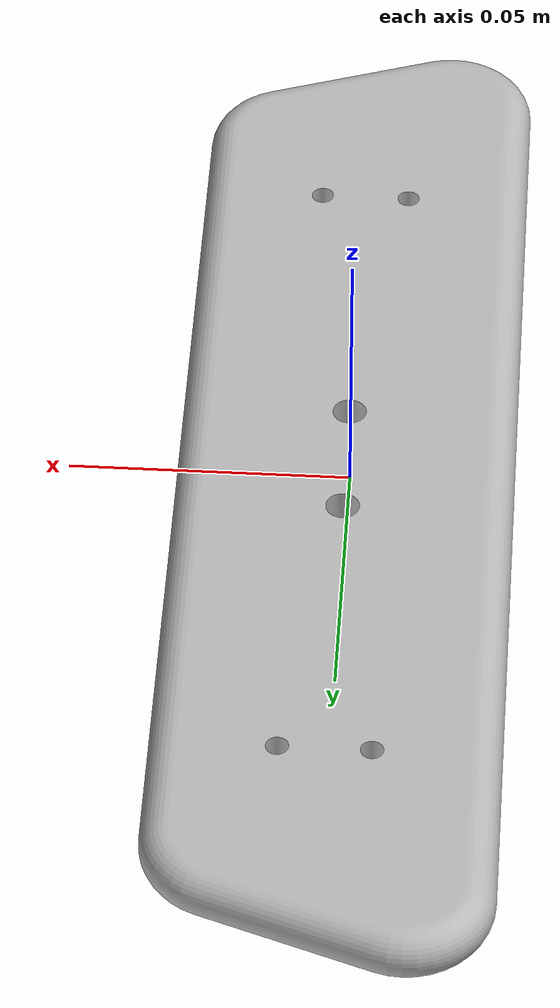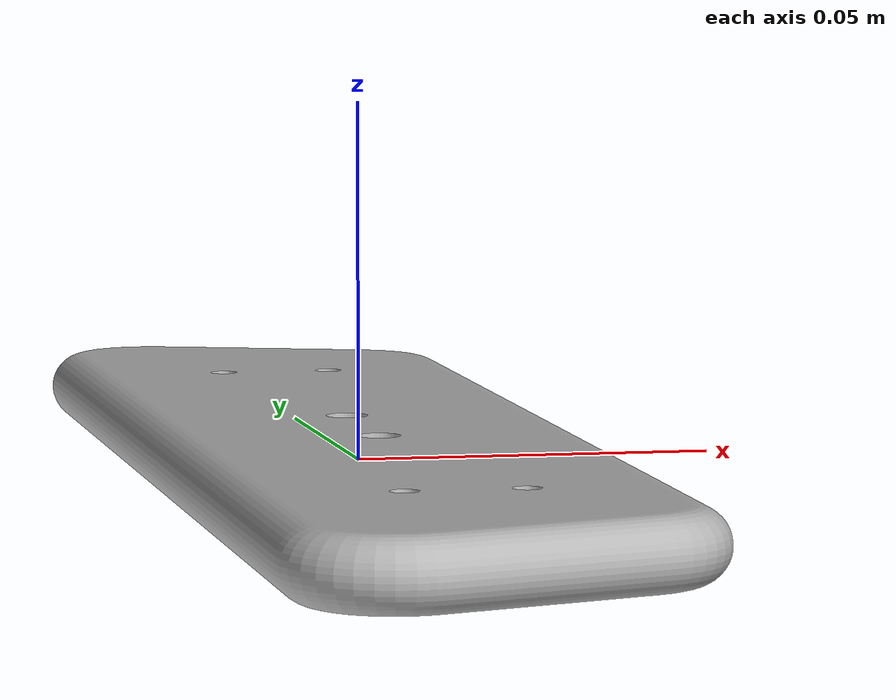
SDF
<?xml version="1.0" ?>
<sdf version="1.6">
  <model name="1)Lower Wing">
    <static>true</static>
    <link name="link">
      <collision name="collision">
        <geometry>
          <mesh>
            <scale>0.001 0.001 0.001</scale>
            <uri>model://1)Lower Wing/1)Lower Wing.stl</uri>
          </mesh>
        </geometry>
      </collision>
      <visual name="visual">
        <geometry>
          <mesh>
            <scale>0.001 0.001 0.001</scale>
            <uri>model://1)Lower Wing/1)Lower Wing.dae</uri>
          </mesh>
        </geometry>
      </visual>
    </link>
  </model>
</sdf>
